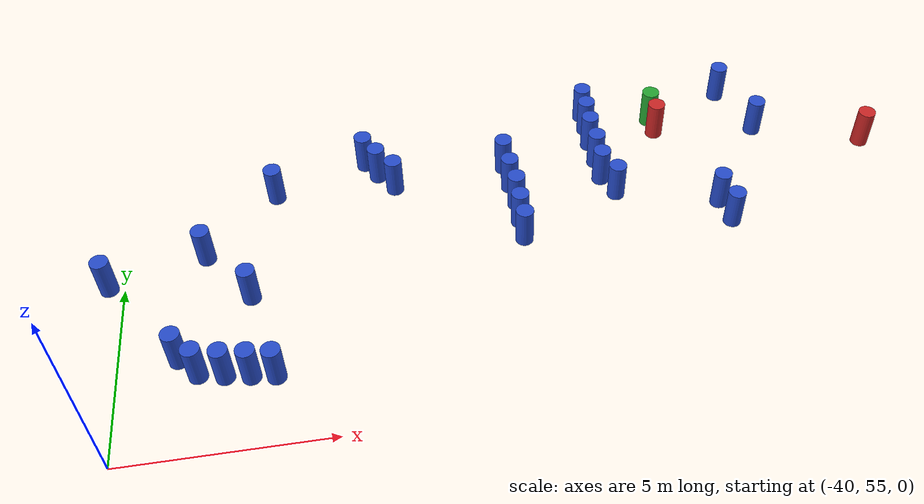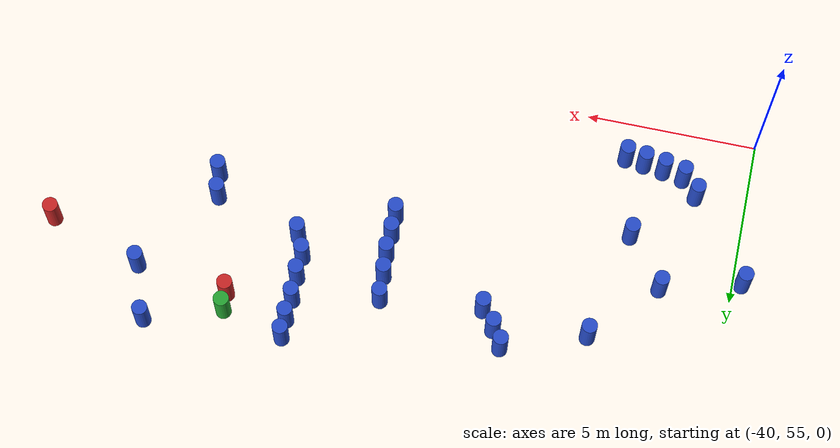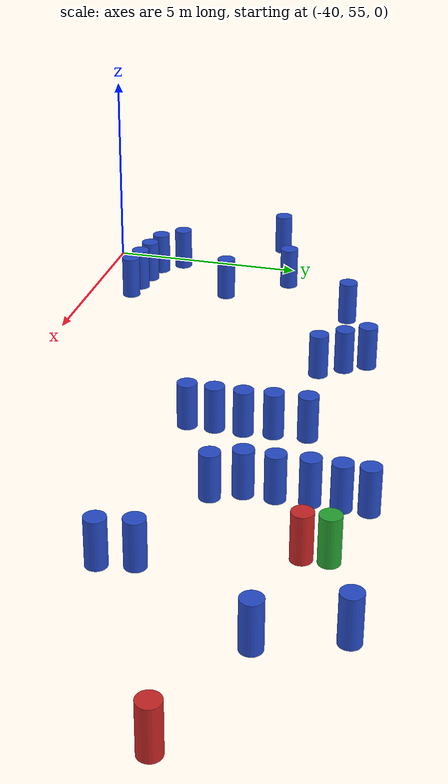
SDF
<sdf version="1.10">
 <world name="IGVC_AutoNav">
  <include>
   <uri>model://barrel_green</uri>
   <name>barrel_green_1_1</name>
   <pose>-15.488190812153249 28.98845227458223 0.51783484937430047 2.6469549633506902e-17 1.6935767443451761e-16 4.3877481445022231e-18</pose>
  </include>
  <include>
   <uri>model://barrel_red</uri>
   <name>barrel_red_1</name>
   <pose>-15.453693650233234 28.475813930075642 0.51783484937430047 3.4194451135022636e-17 -6.677049755806775e-17 -9.2315486362314134e-18</pose>
  </include>
  <include>
   <uri>model://barrel_red</uri>
   <name>barrel_red_2</name>
   <pose>-10.014990794950684 27.262920619148893 0.51783484937430047 -7.4329369513584256e-18 -1.314602637755496e-16 -4.7659448484124759e-18</pose>
  </include>
  <include>
   <uri>model://barrel_blue</uri>
   <name>barrel_blue_4_1_1_1</name>
   <pose>-25.779422655616397 21.898672630649465 0.51783484828566551 5.2116455915608007e-17 -3.9895637684627886e-17 3.266562794944668e-18</pose>
  </include>
  <include>
   <uri>model://barrel_blue</uri>
   <name>barrel_blue_4_1_1_2</name>
   <pose>-26.332673893511299 21.983563914586746 0.51783484828566551 7.276080778904883e-17 -8.0320012298147987e-17 -7.312218899466201e-19</pose>
  </include>
  <include>
   <uri>model://barrel_blue</uri>
   <name>barrel_blue_4_1_1_3</name>
   <pose>-26.911606261524653 22.072150763391008 0.51783484828566551 6.9133127418742747e-17 -8.2396405263797416e-17 1.2107404580581751e-18</pose>
  </include>
  <include>
   <uri>model://barrel_blue</uri>
   <name>barrel_blue_4_1_1_4</name>
   <pose>-27.508251600231219 22.198136037996058 0.51783484828566551 8.0709124955643331e-17 -4.2876280330140585e-17 1.0652459780610473e-18</pose>
  </include>
  <include>
   <uri>model://barrel_blue</uri>
   <name>barrel_blue_4_1_1_5</name>
   <pose>-27.955176079506373 22.68663113718398 0.51783484828566551 7.6817288058157625e-17 -7.059981754776003e-17 -7.1589113642926676e-19</pose>
  </include>
  <include>
   <uri>model://barrel_blue</uri>
   <name>barrel_blue_4_1_1_6</name>
   <pose>-29.678255409195131 25.096483337328021 0.51783485647889871 7.2830258768353053e-17 -3.5910116187749943e-17 -9.6690616143501588e-20</pose>
  </include>
  <include>
   <uri>model://barrel_blue</uri>
   <name>barrel_blue_4_1_1_6_1</name>
   <pose>-26.327391241844818 24.29527154144678 0.51783401723409739 7.317919761579684e-17 -3.8162217955112556e-17 7.4278787902153861e-19</pose>
  </include>
  <include>
   <uri>model://barrel_blue</uri>
   <name>barrel_blue_4_1_1_6_2</name>
   <pose>-27.399828034266733 25.725229099412566 0.51783484828566551 8.0428683605344417e-17 -4.2336800053864647e-17 -8.3592890525012392e-19</pose>
  </include>
  <include>
   <uri>model://barrel_blue</uri>
   <name>barrel_blue_4_1_1_6_3</name>
   <pose>-25.668338624967266 27.575098065469376 0.51783484828566551 6.6789079732847893e-17 -9.558617178286047e-17 -2.8380969839369514e-18</pose>
  </include>
  <include>
   <uri>model://barrel_blue</uri>
   <name>barrel_blue_4_1_1_6_3_1</name>
   <pose>-23.328089529588379 28.436957002087077 0.51783401723409739 6.46443552902101e-17 -8.5950730543215376e-17 -2.1463740806699731e-18</pose>
  </include>
  <include>
   <uri>model://barrel_blue</uri>
   <name>barrel_blue_4_1_1_6_3_2</name>
   <pose>-23.030303434124704 27.946207855720743 0.51783484828566551 9.1386829752706807e-17 -1.5356201948154726e-16 -5.6475616325157717e-18</pose>
  </include>
  <include>
   <uri>model://barrel_blue</uri>
   <name>barrel_blue_4_1_1_6_3_3</name>
   <pose>-22.635027183918385 27.419739133483979 0.51783484794965995 5.1836341034661293e-17 -9.9171180888365282e-17 -7.4231241657184039e-18</pose>
  </include>
  <include>
   <uri>model://barrel_blue</uri>
   <name>barrel_blue_4_1_1_6_3_3_1</name>
   <pose>-19.620512793592969 25.138937812586917 0.517834082743719 6.7894567740126112e-17 -7.8684613713202596e-17 -3.2199783355516555e-18</pose>
  </include>
  <include>
   <uri>model://barrel_blue</uri>
   <name>barrel_blue_4_1_1_6_3_3_1_1</name>
   <pose>-19.632433385157498 25.740723636936828 0.51783401723409739 6.7930108988685503e-17 -7.8737983852732103e-17 -3.2091969747785243e-18</pose>
  </include>
  <include>
   <uri>model://barrel_blue</uri>
   <name>barrel_blue_4_1_1_6_3_3_1_2</name>
   <pose>-19.622708206437395 26.374098058757912 0.51783401723409739 6.786028672019155e-17 -7.8811965564131994e-17 -3.1993878207440348e-18</pose>
  </include>
  <include>
   <uri>model://barrel_blue</uri>
   <name>barrel_blue_4_1_1_6_3_3_1_3</name>
   <pose>-19.686323309466843 27.018097868334205 0.51783401723409739 6.7896659502370506e-17 -7.8593865792409059e-17 -3.2301003561578684e-18</pose>
  </include>
  <include>
   <uri>model://barrel_blue</uri>
   <name>barrel_blue_4_1_1_6_3_3_1_4</name>
   <pose>-19.73604797897935 27.746526044452374 0.51783401723409739 6.7904762620806871e-17 -7.8632200651373623e-17 -3.2214005375625443e-18</pose>
  </include>
  <include>
   <uri>model://barrel_blue</uri>
   <name>barrel_blue_4_1_1_6_3_3_1_5_1</name>
   <pose>-17.287696266842726 29.438848740703374 0.51783401723409739 6.7918986914017405e-17 -7.8829568077165886e-17 -3.2217840699629175e-18</pose>
  </include>
  <include>
   <uri>model://barrel_blue</uri>
   <name>barrel_blue_4_1_1_6_3_3_1_5_1_1</name>
   <pose>-17.288449526435922 28.893720741879452 0.51783401723409739 6.795898972552441e-17 -7.8791511125613096e-17 -3.2294865163407041e-18</pose>
  </include>
  <include>
   <uri>model://barrel_blue</uri>
   <name>barrel_blue_4_1_1_6_3_3_1_5_1_1_1</name>
   <pose>-17.314539232890919 28.270830920535928 0.51783401723409739 6.7928981756606005e-17 -7.8807566210176933e-17 -3.2235503835835786e-18</pose>
  </include>
  <include>
   <uri>model://barrel_blue</uri>
   <name>barrel_blue_4_1_1_6_3_3_1_5_1_1_1_1</name>
   <pose>-17.289451678824264 27.582290008933573 0.51783401723409739 6.7917952976091868e-17 -7.8768992552351785e-17 -3.2075313662465139e-18</pose>
  </include>
  <include>
   <uri>model://barrel_blue</uri>
   <name>barrel_blue_4_1_1_6_3_3_1_5_1_1_1_2</name>
   <pose>-17.290319735254734 26.936241462225251 0.51783401723409739 6.8019169051462611e-17 -7.8864495702593374e-17 -3.2264767860995645e-18</pose>
  </include>
  <include>
   <uri>model://barrel_blue</uri>
   <name>barrel_blue_4_1_1_6_3_3_1_5_1_1_1_3</name>
   <pose>-17.018110751259275 26.326627865477999 0.51783401723409739 6.7988999719238639e-17 -7.8873530737026032e-17 -3.239725513469941e-18</pose>
  </include>
  <include>
   <uri>model://barrel_blue</uri>
   <name>barrel_blue_4_1_1_6_3_3_1_5_1_1_1_3_1</name>
   <pose>-14.327893923444233 24.915140633803603 0.51783401723409739 6.7922723504552886e-17 -7.8886635430421813e-17 -3.2535982299319281e-18</pose>
  </include>
  <include>
   <uri>model://barrel_blue</uri>
   <name>barrel_blue_4_1_1_6_3_3_1_5_1_1_1_3_2</name>
   <pose>-14.473085327461627 25.614636744000212 0.51783401723409739 6.8057190758112898e-17 -7.8862830618434924e-17 -3.2684584010311962e-18</pose>
  </include>
  <include>
   <uri>model://barrel_blue</uri>
   <name>barrel_blue_4_1_1_6_3_3_1_5_1_1_1_3_4_1</name>
   <pose>-13.342273040798865 29.732863534373681 0.51783401723409739 6.8118531974963878e-17 -7.8833657820700281e-17 -3.2530780816019903e-18</pose>
  </include>
  <include>
   <uri>model://barrel_blue</uri>
   <name>barrel_blue_4_1_1_6_3_3_1_5_1_1_1_3_4_2</name>
   <pose>-12.762974123696234 28.171627531743731 0.51783401723409739 6.8059837419277967e-17 -7.9014800103844959e-17 -3.241565217627422e-18</pose>
  </include>
 </world>
</sdf>
